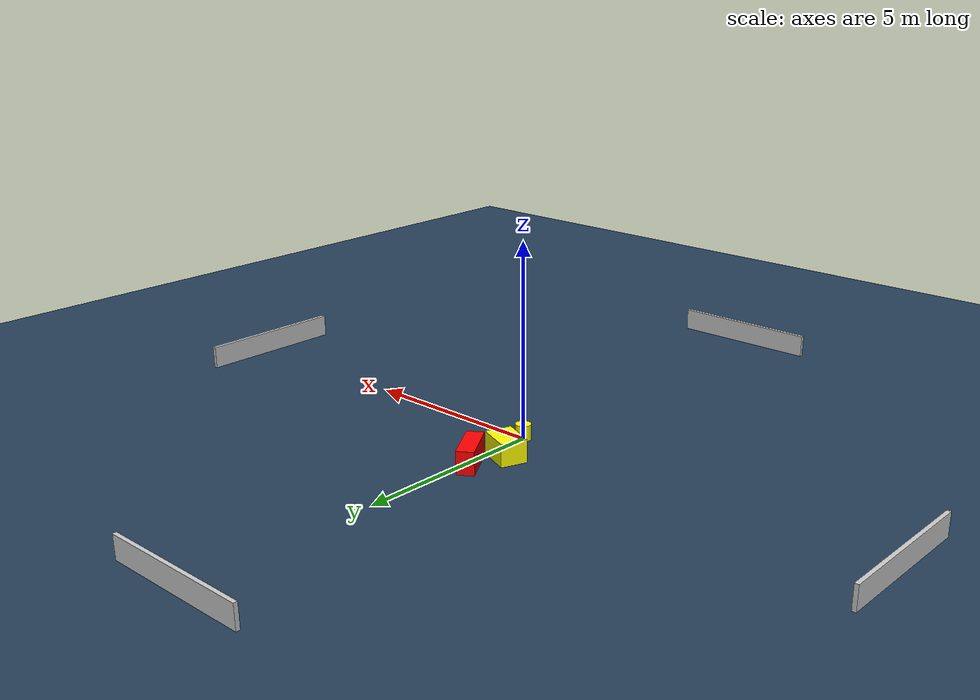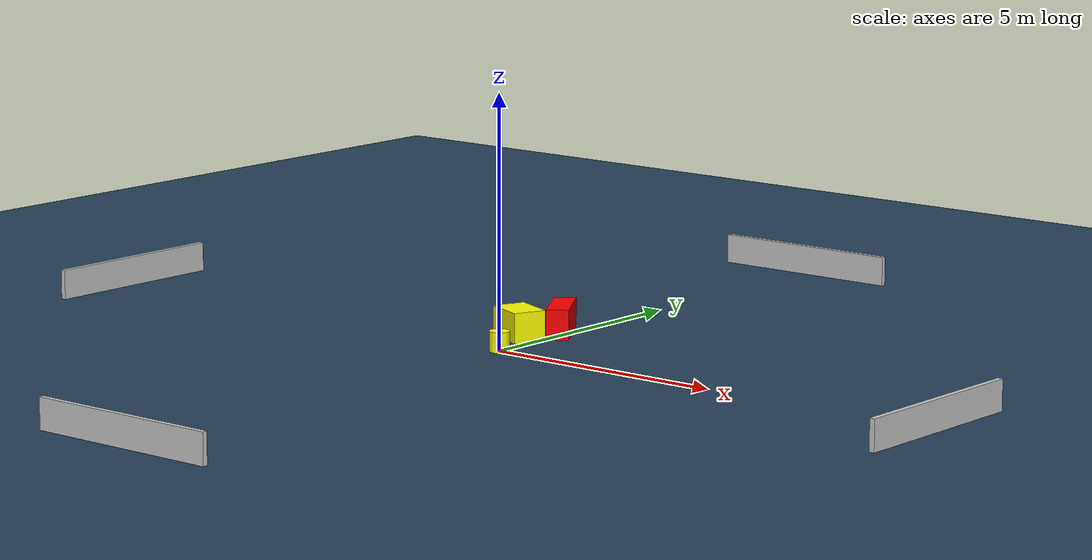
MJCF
<?xml version="1.0" ?>
<mujoco model="generated_environment">
  <option timestep="0.01" integrator="RK4" cone="elliptic"/>
  <default>
    <geom density="1"/>
  </default>
  <asset>
    <texture builtin="gradient" height="3072" name="skybox" rgb1="0.3 0.5 0.7" rgb2="0 0 0" type="skybox" width="512"/>
    <texture builtin="checker" height="300" name="groundplane" rgb1="0.2 0.3 0.4" rgb2="0.1 0.2 0.3" type="2d" width="300"/>
    <material name="groundplane" reflectance="0.2" texrepeat="5 5" texture="groundplane"/>
  </asset>
  <worldbody>
    <light dir="0 0 -1" directional="true" pos="0 0 1.5"/>
    <geom condim="3" friction="0.5 0.005 0.001" material="groundplane" name="floor" pos="0 0 0" size="0 0 0.05" type="plane"/>
    <body name="walls">
      <geom name="wall_1" condim="4" pos="-10.0 0.0 0.3" rgba="0.800000011920929 0.800000011920929 0.800000011920929 1.0" size="0.05 2.0 0.3" type="box"/>
      <geom name="wall_2" condim="4" pos="10.0 0.0 0.3" rgba="0.800000011920929 0.800000011920929 0.800000011920929 1.0" size="0.05 2.0 0.3" type="box"/>
      <geom name="wall_3" condim="4" pos="0.0 -10.0 0.3" rgba="0.800000011920929 0.800000011920929 0.800000011920929 1.0" size="2.0 0.05 0.3" type="box"/>
      <geom name="wall_4" condim="4" pos="0.0 10.0 0.3" rgba="0.800000011920929 0.800000011920929 0.800000011920929 1.0" size="2.0 0.05 0.3" type="box"/>
    </body>
    <body name="robot">
      <joint name="joint_x" type="slide" pos="0 0 0" axis="1 0 0"/>
      <joint name="joint_y" type="slide" pos="0 0 0" axis="0 1 0"/>
      <geom name="robot" type="cylinder" pos="0.0 0.0 0.2" size="0.2 0.2 0.0" mass="5.0" friction="1.0 0.005 0.0001" condim="4" rgba="1.0 1.0 0.0 1.0"/>
    </body>
    <body name="obstacle_1_movable">
      <geom name="obstacle_1_movable" condim="4" pos="-0.47933208798516674 1.1577499904909534 0.3" euler="0 0 247.7932200461351" friction="0.0 0.005 0.001" rgba="1.0 1.0 0.0 1.0" size="0.34084165653056453 0.4435276221703487 0.3" type="box" mass="0.1"/>
      <joint type="free"/>
    </body>
    <body name="obstacle_2_static">
      <geom name="obstacle_2_static" condim="4" pos="-0.10949564592677044 1.9942228082123155 0.3" euler="0 0 212.0819665406852" friction="0.0 0.005 0.001" rgba="1.0 0.0 0.0 1.0" size="0.22027309139904305 0.6068522855836995 0.3" type="box"/>
    </body>
  </worldbody>
  <actuator>
    <motor name="actuator_x" joint="joint_x" gear="1" ctrlrange="-1 1"/>
    <motor name="actuator_y" joint="joint_y" gear="1" ctrlrange="-1 1"/>
  </actuator>
</mujoco>
